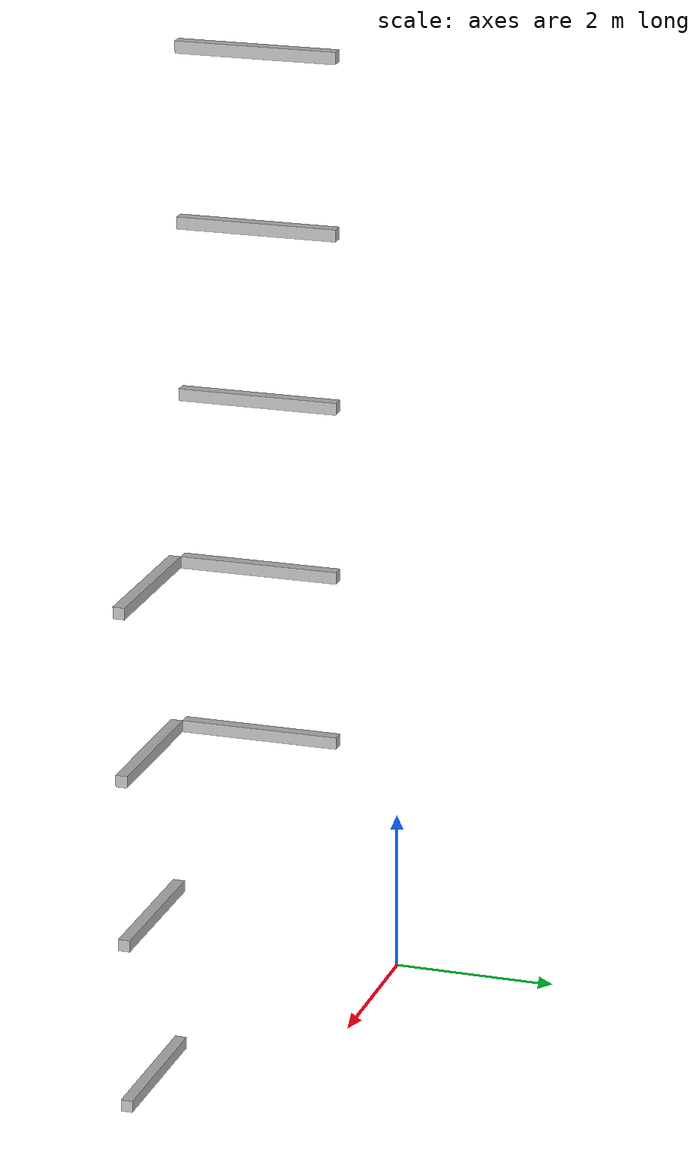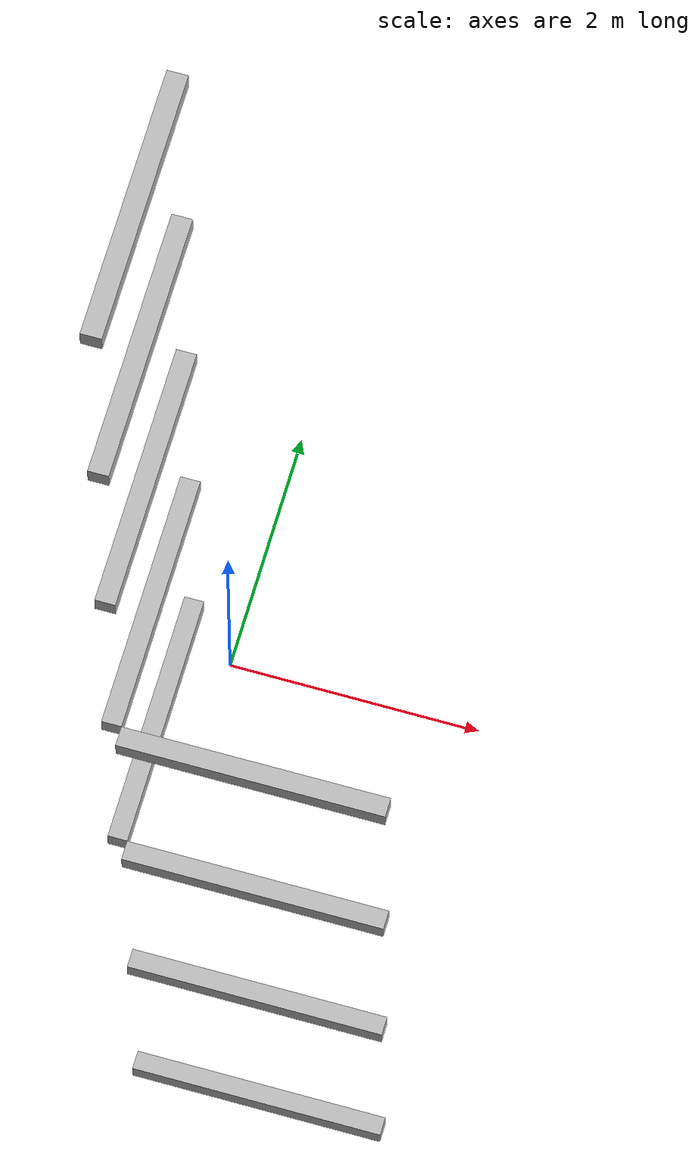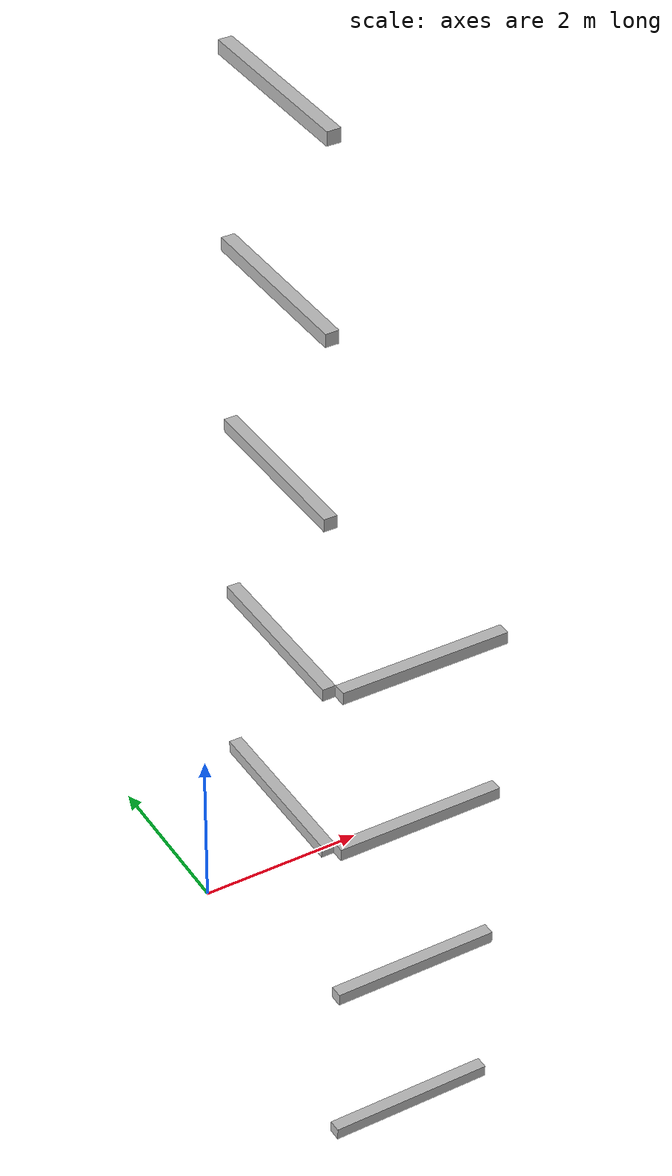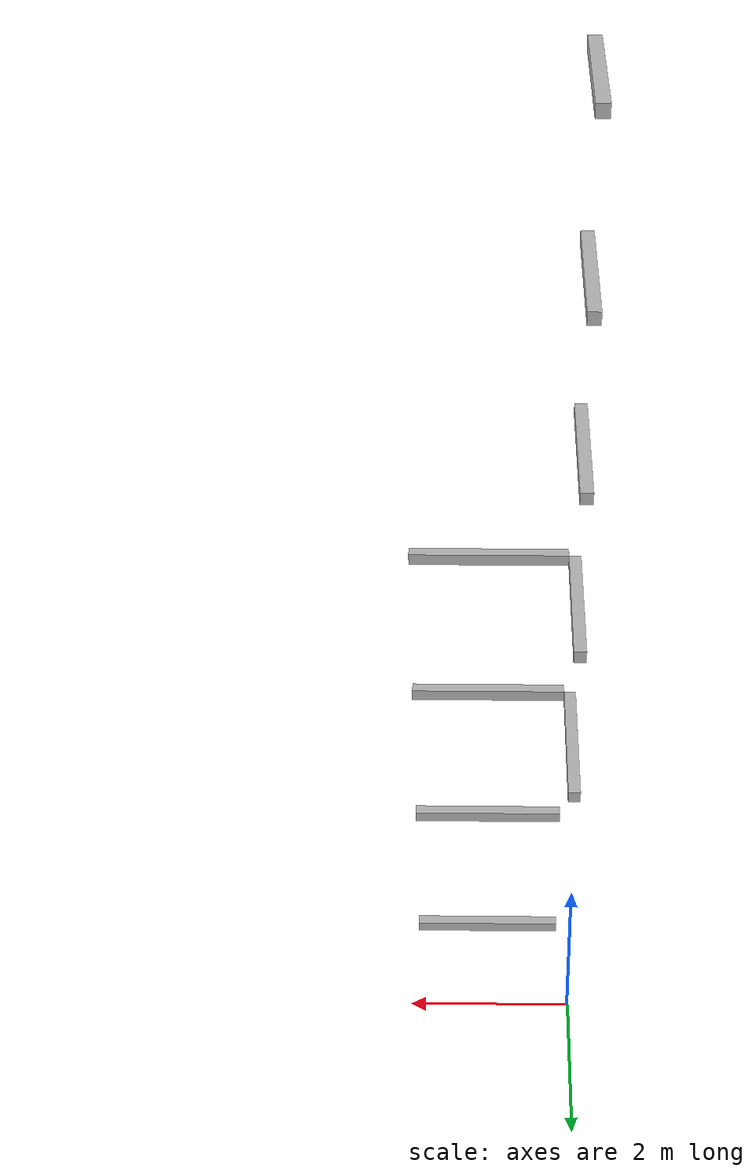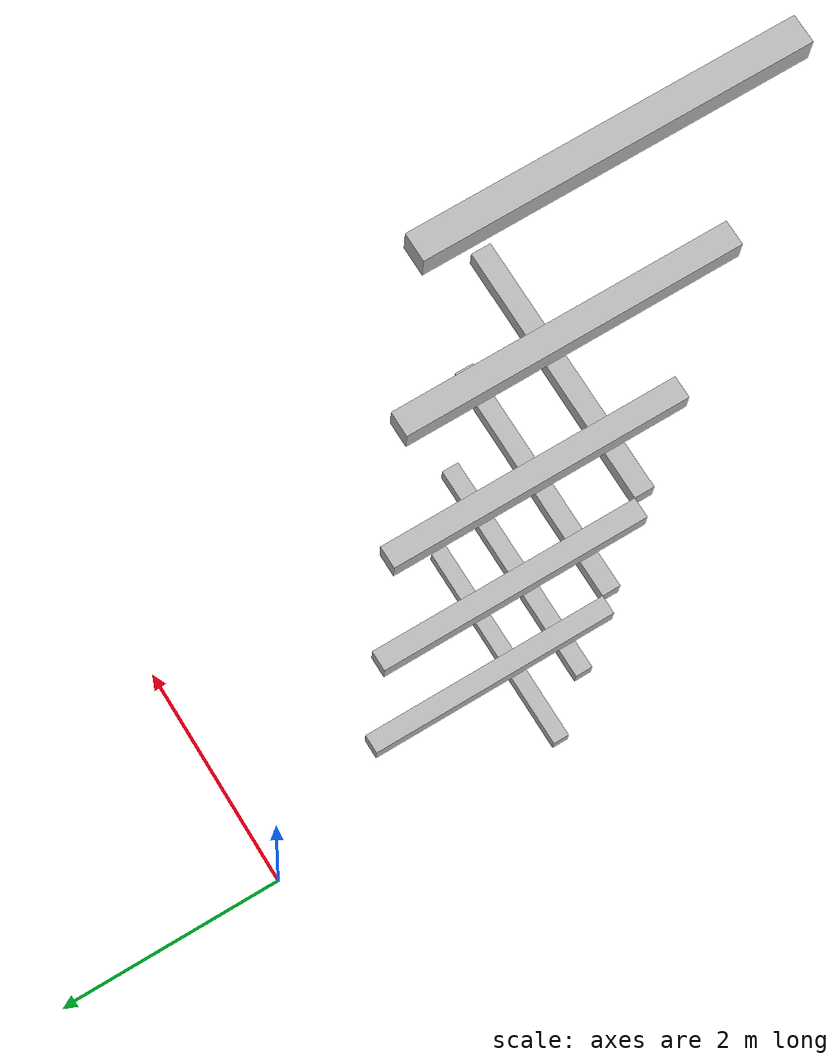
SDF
<sdf version="1.7">
 <world name="default">
  <model name="orthogonal_747_2.000.15_TS">
   <static>1</static>
   <link name="x_link_0_1_3">
    <inertial>
     <mass>1</mass>
     <inertia>
      <ixx>0.166667</ixx>
      <ixy>0</ixy>
      <ixz>0</ixz>
      <iyy>0.166667</iyy>
      <iyz>0</iyz>
      <izz>0.166667</izz>
     </inertia>
    </inertial>
    <pose>7.525 2.15 1.075 0 -0 0</pose>
    <visual name="visual_0">
     <laser_retro>225</laser_retro>
     <geometry><box><size>2 1e-06 0.15</size></box></geometry>
     <material>
      <script><name>Gazebo/Grey</name><uri>file://media/materials/scripts/gazebo.material</uri></script>
      <shader type="pixel"><normal_map>__default__</normal_map></shader>
      <ambient>0.678 0.498 0.659 1</ambient>
      <diffuse>0.7 0.7 0.7 1</diffuse>
      <specular>0.01 0.01 0.01 1</specular>
      <emissive>0 0 0 1</emissive>
     </material>
     <pose>0 -0.075 0 0 -0 0</pose>
     <transparency>1</transparency>
    </visual>
    <visual name="visual_1">
     <laser_retro>226</laser_retro>
     <geometry><box><size>2 1e-06 0.15</size></box></geometry>
     <material>
      <script><name>Gazebo/Grey</name><uri>file://media/materials/scripts/gazebo.material</uri></script>
      <shader type="pixel"><normal_map>__default__</normal_map></shader>
      <ambient>0.447 0.624 0.812 1</ambient>
      <diffuse>0.7 0.7 0.7 1</diffuse>
      <specular>0.01 0.01 0.01 1</specular>
      <emissive>0 0 0 1</emissive>
     </material>
     <pose>0 0.075 0 0 -0 0</pose>
     <transparency>1</transparency>
    </visual>
    <visual name="visual_2">
     <laser_retro>227</laser_retro>
     <geometry><box><size>2 0.15 1e-06</size></box></geometry>
     <material>
      <script><name>Gazebo/Grey</name><uri>file://media/materials/scripts/gazebo.material</uri></script>
      <shader type="pixel"><normal_map>__default__</normal_map></shader>
      <ambient>0.988 0.686 0.243 1</ambient>
      <diffuse>0.7 0.7 0.7 1</diffuse>
      <specular>0.01 0.01 0.01 1</specular>
      <emissive>0 0 0 1</emissive>
     </material>
     <pose>0 0 -0.075 0 -0 0</pose>
     <transparency>1</transparency>
    </visual>
    <visual name="visual_3">
     <laser_retro>228</laser_retro>
     <geometry><box><size>1e-06 0.15 0.15</size></box></geometry>
     <material>
      <script><name>Gazebo/Grey</name><uri>file://media/materials/scripts/gazebo.material</uri></script>
      <shader type="pixel"><normal_map>__default__</normal_map></shader>
      <ambient>0.988 0.914 0.31 1</ambient>
      <diffuse>0.7 0.7 0.7 1</diffuse>
      <specular>0.01 0.01 0.01 1</specular>
      <emissive>0 0 0 1</emissive>
     </material>
     <pose>1 0 0 0 -0 0</pose>
     <transparency>1</transparency>
    </visual>
    <visual name="visual_4">
     <laser_retro>229</laser_retro>
     <geometry><box><size>2 0.15 1e-06</size></box></geometry>
     <material>
      <script><name>Gazebo/Grey</name><uri>file://media/materials/scripts/gazebo.material</uri></script>
      <shader type="pixel"><normal_map>__default__</normal_map></shader>
      <ambient>0.937 0.161 0.161 1</ambient>
      <diffuse>0.7 0.7 0.7 1</diffuse>
      <specular>0.01 0.01 0.01 1</specular>
      <emissive>0 0 0 1</emissive>
     </material>
     <pose>0 0 0.075 0 -0 0</pose>
     <transparency>1</transparency>
    </visual>
    <visual name="visual_5">
     <laser_retro>230</laser_retro>
     <geometry><box><size>1e-06 0.15 0.15</size></box></geometry>
     <material>
      <script><name>Gazebo/Grey</name><uri>file://media/materials/scripts/gazebo.material</uri></script>
      <shader type="pixel"><normal_map>__default__</normal_map></shader>
      <ambient>0.541 0.886 0.204 1</ambient>
      <diffuse>0.7 0.7 0.7 1</diffuse>
      <specular>0.01 0.01 0.01 1</specular>
      <emissive>0 0 0 1</emissive>
     </material>
     <pose>-1 0 0 0 -0 0</pose>
     <transparency>1</transparency>
    </visual>
    <visual name="visual_texture">
     <geometry><box><size>1.9998 0.149985 0.149985</size></box></geometry>
     <material>
      <script>
       <uri>model://BASE_MODELS/simple_block_v2_textured/materials/scripts</uri>
       <uri>model://BASE_MODELS/simple_block_v2_textured/materials/textures</uri>
       <name>metal</name>
      </script>
     </material>
     <laser_retro>231</laser_retro>
    </visual>
    <collision name="collision">
     <geometry><box><size>2 0.15 0.15</size></box></geometry>
     <surface>
      <friction>
       <ode><mu>1</mu><mu2>1</mu2><fdir1>0 0 0</fdir1><slip1>0</slip1><slip2>0</slip2></ode>
       <torsional>
        <coefficient>1</coefficient>
        <patch_radius>0</patch_radius>
        <surface_radius>0</surface_radius>
        <use_patch_radius>1</use_patch_radius>
        <ode><slip>0</slip></ode>
       </torsional>
      </friction>
      <bounce><restitution_coefficient>0</restitution_coefficient><threshold>1e+06</threshold></bounce>
      <contact>
       <collide_without_contact>0</collide_without_contact>
       <collide_without_contact_bitmask>1</collide_without_contact_bitmask>
       <collide_bitmask>1</collide_bitmask>
       <ode>
        <soft_cfm>0</soft_cfm>
        <soft_erp>0.2</soft_erp>
        <kp>1e+13</kp>
        <kd>1</kd>
        <max_vel>0.01</max_vel>
        <min_depth>0</min_depth>
       </ode>
       <bullet>
        <split_impulse>1</split_impulse>
        <split_impulse_penetration_threshold>-0.01</split_impulse_penetration_threshold>
        <soft_cfm>0</soft_cfm>
        <soft_erp>0.2</soft_erp>
        <kp>1e+13</kp>
        <kd>1</kd>
       </bullet>
      </contact>
     </surface>
    </collision>
   </link>
   <link name="x_link_1_1_3">
    <inertial>
     <mass>1</mass>
     <inertia>
      <ixx>0.166667</ixx>
      <ixy>0</ixy>
      <ixz>0</ixz>
      <iyy>0.166667</iyy>
      <iyz>0</iyz>
      <izz>0.166667</izz>
     </inertia>
    </inertial>
    <pose>7.525 2.15 3.225 0 -0 0</pose>
    <visual name="visual_0">
     <laser_retro>1037</laser_retro>
     <geometry><box><size>2 1e-06 0.15</size></box></geometry>
     <material>
      <script><name>Gazebo/Grey</name><uri>file://media/materials/scripts/gazebo.material</uri></script>
      <shader type="pixel"><normal_map>__default__</normal_map></shader>
      <ambient>0.678 0.498 0.659 1</ambient>
      <diffuse>0.7 0.7 0.7 1</diffuse>
      <specular>0.01 0.01 0.01 1</specular>
      <emissive>0 0 0 1</emissive>
     </material>
     <pose>0 -0.075 0 0 -0 0</pose>
     <transparency>1</transparency>
    </visual>
    <visual name="visual_1">
     <laser_retro>1038</laser_retro>
     <geometry><box><size>2 1e-06 0.15</size></box></geometry>
     <material>
      <script><name>Gazebo/Grey</name><uri>file://media/materials/scripts/gazebo.material</uri></script>
      <shader type="pixel"><normal_map>__default__</normal_map></shader>
      <ambient>0.447 0.624 0.812 1</ambient>
      <diffuse>0.7 0.7 0.7 1</diffuse>
      <specular>0.01 0.01 0.01 1</specular>
      <emissive>0 0 0 1</emissive>
     </material>
     <pose>0 0.075 0 0 -0 0</pose>
     <transparency>1</transparency>
    </visual>
    <visual name="visual_2">
     <laser_retro>1039</laser_retro>
     <geometry><box><size>2 0.15 1e-06</size></box></geometry>
     <material>
      <script><name>Gazebo/Grey</name><uri>file://media/materials/scripts/gazebo.material</uri></script>
      <shader type="pixel"><normal_map>__default__</normal_map></shader>
      <ambient>0.988 0.686 0.243 1</ambient>
      <diffuse>0.7 0.7 0.7 1</diffuse>
      <specular>0.01 0.01 0.01 1</specular>
      <emissive>0 0 0 1</emissive>
     </material>
     <pose>0 0 -0.075 0 -0 0</pose>
     <transparency>1</transparency>
    </visual>
    <visual name="visual_3">
     <laser_retro>1040</laser_retro>
     <geometry><box><size>1e-06 0.15 0.15</size></box></geometry>
     <material>
      <script><name>Gazebo/Grey</name><uri>file://media/materials/scripts/gazebo.material</uri></script>
      <shader type="pixel"><normal_map>__default__</normal_map></shader>
      <ambient>0.988 0.914 0.31 1</ambient>
      <diffuse>0.7 0.7 0.7 1</diffuse>
      <specular>0.01 0.01 0.01 1</specular>
      <emissive>0 0 0 1</emissive>
     </material>
     <pose>1 0 0 0 -0 0</pose>
     <transparency>1</transparency>
    </visual>
    <visual name="visual_4">
     <laser_retro>1041</laser_retro>
     <geometry><box><size>2 0.15 1e-06</size></box></geometry>
     <material>
      <script><name>Gazebo/Grey</name><uri>file://media/materials/scripts/gazebo.material</uri></script>
      <shader type="pixel"><normal_map>__default__</normal_map></shader>
      <ambient>0.937 0.161 0.161 1</ambient>
      <diffuse>0.7 0.7 0.7 1</diffuse>
      <specular>0.01 0.01 0.01 1</specular>
      <emissive>0 0 0 1</emissive>
     </material>
     <pose>0 0 0.075 0 -0 0</pose>
     <transparency>1</transparency>
    </visual>
    <visual name="visual_5">
     <laser_retro>1042</laser_retro>
     <geometry><box><size>1e-06 0.15 0.15</size></box></geometry>
     <material>
      <script><name>Gazebo/Grey</name><uri>file://media/materials/scripts/gazebo.material</uri></script>
      <shader type="pixel"><normal_map>__default__</normal_map></shader>
      <ambient>0.541 0.886 0.204 1</ambient>
      <diffuse>0.7 0.7 0.7 1</diffuse>
      <specular>0.01 0.01 0.01 1</specular>
      <emissive>0 0 0 1</emissive>
     </material>
     <pose>-1 0 0 0 -0 0</pose>
     <transparency>1</transparency>
    </visual>
    <visual name="visual_texture">
     <geometry><box><size>1.9998 0.149985 0.149985</size></box></geometry>
     <material>
      <script>
       <uri>model://BASE_MODELS/simple_block_v2_textured/materials/scripts</uri>
       <uri>model://BASE_MODELS/simple_block_v2_textured/materials/textures</uri>
       <name>metal</name>
      </script>
     </material>
     <laser_retro>1043</laser_retro>
    </visual>
    <collision name="collision">
     <geometry><box><size>2 0.15 0.15</size></box></geometry>
     <surface>
      <friction>
       <ode><mu>1</mu><mu2>1</mu2><fdir1>0 0 0</fdir1><slip1>0</slip1><slip2>0</slip2></ode>
       <torsional>
        <coefficient>1</coefficient>
        <patch_radius>0</patch_radius>
        <surface_radius>0</surface_radius>
        <use_patch_radius>1</use_patch_radius>
        <ode><slip>0</slip></ode>
       </torsional>
      </friction>
      <bounce><restitution_coefficient>0</restitution_coefficient><threshold>1e+06</threshold></bounce>
      <contact>
       <collide_without_contact>0</collide_without_contact>
       <collide_without_contact_bitmask>1</collide_without_contact_bitmask>
       <collide_bitmask>1</collide_bitmask>
       <ode>
        <soft_cfm>0</soft_cfm>
        <soft_erp>0.2</soft_erp>
        <kp>1e+13</kp>
        <kd>1</kd>
        <max_vel>0.01</max_vel>
        <min_depth>0</min_depth>
       </ode>
       <bullet>
        <split_impulse>1</split_impulse>
        <split_impulse_penetration_threshold>-0.01</split_impulse_penetration_threshold>
        <soft_cfm>0</soft_cfm>
        <soft_erp>0.2</soft_erp>
        <kp>1e+13</kp>
        <kd>1</kd>
       </bullet>
      </contact>
     </surface>
    </collision>
   </link>
   <link name="x_link_2_1_3">
    <inertial>
     <mass>1</mass>
     <inertia>
      <ixx>0.166667</ixx>
      <ixy>0</ixy>
      <ixz>0</ixz>
      <iyy>0.166667</iyy>
      <iyz>0</iyz>
      <izz>0.166667</izz>
     </inertia>
    </inertial>
    <pose>7.525 2.15 5.375 0 -0 0</pose>
    <visual name="visual_0">
     <laser_retro>1940</laser_retro>
     <geometry><box><size>2 1e-06 0.15</size></box></geometry>
     <material>
      <script><name>Gazebo/Grey</name><uri>file://media/materials/scripts/gazebo.material</uri></script>
      <shader type="pixel"><normal_map>__default__</normal_map></shader>
      <ambient>0.678 0.498 0.659 1</ambient>
      <diffuse>0.7 0.7 0.7 1</diffuse>
      <specular>0.01 0.01 0.01 1</specular>
      <emissive>0 0 0 1</emissive>
     </material>
     <pose>0 -0.075 0 0 -0 0</pose>
     <transparency>1</transparency>
    </visual>
    <visual name="visual_1">
     <laser_retro>1941</laser_retro>
     <geometry><box><size>2 1e-06 0.15</size></box></geometry>
     <material>
      <script><name>Gazebo/Grey</name><uri>file://media/materials/scripts/gazebo.material</uri></script>
      <shader type="pixel"><normal_map>__default__</normal_map></shader>
      <ambient>0.447 0.624 0.812 1</ambient>
      <diffuse>0.7 0.7 0.7 1</diffuse>
      <specular>0.01 0.01 0.01 1</specular>
      <emissive>0 0 0 1</emissive>
     </material>
     <pose>0 0.075 0 0 -0 0</pose>
     <transparency>1</transparency>
    </visual>
    <visual name="visual_2">
     <laser_retro>1942</laser_retro>
     <geometry><box><size>2 0.15 1e-06</size></box></geometry>
     <material>
      <script><name>Gazebo/Grey</name><uri>file://media/materials/scripts/gazebo.material</uri></script>
      <shader type="pixel"><normal_map>__default__</normal_map></shader>
      <ambient>0.988 0.686 0.243 1</ambient>
      <diffuse>0.7 0.7 0.7 1</diffuse>
      <specular>0.01 0.01 0.01 1</specular>
      <emissive>0 0 0 1</emissive>
     </material>
     <pose>0 0 -0.075 0 -0 0</pose>
     <transparency>1</transparency>
    </visual>
    <visual name="visual_3">
     <laser_retro>1943</laser_retro>
     <geometry><box><size>1e-06 0.15 0.15</size></box></geometry>
     <material>
      <script><name>Gazebo/Grey</name><uri>file://media/materials/scripts/gazebo.material</uri></script>
      <shader type="pixel"><normal_map>__default__</normal_map></shader>
      <ambient>0.988 0.914 0.31 1</ambient>
      <diffuse>0.7 0.7 0.7 1</diffuse>
      <specular>0.01 0.01 0.01 1</specular>
      <emissive>0 0 0 1</emissive>
     </material>
     <pose>1 0 0 0 -0 0</pose>
     <transparency>1</transparency>
    </visual>
    <visual name="visual_4">
     <laser_retro>1944</laser_retro>
     <geometry><box><size>2 0.15 1e-06</size></box></geometry>
     <material>
      <script><name>Gazebo/Grey</name><uri>file://media/materials/scripts/gazebo.material</uri></script>
      <shader type="pixel"><normal_map>__default__</normal_map></shader>
      <ambient>0.937 0.161 0.161 1</ambient>
      <diffuse>0.7 0.7 0.7 1</diffuse>
      <specular>0.01 0.01 0.01 1</specular>
      <emissive>0 0 0 1</emissive>
     </material>
     <pose>0 0 0.075 0 -0 0</pose>
     <transparency>1</transparency>
    </visual>
    <visual name="visual_5">
     <laser_retro>1945</laser_retro>
     <geometry><box><size>1e-06 0.15 0.15</size></box></geometry>
     <material>
      <script><name>Gazebo/Grey</name><uri>file://media/materials/scripts/gazebo.material</uri></script>
      <shader type="pixel"><normal_map>__default__</normal_map></shader>
      <ambient>0.541 0.886 0.204 1</ambient>
      <diffuse>0.7 0.7 0.7 1</diffuse>
      <specular>0.01 0.01 0.01 1</specular>
      <emissive>0 0 0 1</emissive>
     </material>
     <pose>-1 0 0 0 -0 0</pose>
     <transparency>1</transparency>
    </visual>
    <visual name="visual_texture">
     <geometry><box><size>1.9998 0.149985 0.149985</size></box></geometry>
     <material>
      <script>
       <uri>model://BASE_MODELS/simple_block_v2_textured/materials/scripts</uri>
       <uri>model://BASE_MODELS/simple_block_v2_textured/materials/textures</uri>
       <name>metal</name>
      </script>
     </material>
     <laser_retro>1946</laser_retro>
    </visual>
    <collision name="collision">
     <geometry><box><size>2 0.15 0.15</size></box></geometry>
     <surface>
      <friction>
       <ode><mu>1</mu><mu2>1</mu2><fdir1>0 0 0</fdir1><slip1>0</slip1><slip2>0</slip2></ode>
       <torsional>
        <coefficient>1</coefficient>
        <patch_radius>0</patch_radius>
        <surface_radius>0</surface_radius>
        <use_patch_radius>1</use_patch_radius>
        <ode><slip>0</slip></ode>
       </torsional>
      </friction>
      <bounce><restitution_coefficient>0</restitution_coefficient><threshold>1e+06</threshold></bounce>
      <contact>
       <collide_without_contact>0</collide_without_contact>
       <collide_without_contact_bitmask>1</collide_without_contact_bitmask>
       <collide_bitmask>1</collide_bitmask>
       <ode>
        <soft_cfm>0</soft_cfm>
        <soft_erp>0.2</soft_erp>
        <kp>1e+13</kp>
        <kd>1</kd>
        <max_vel>0.01</max_vel>
        <min_depth>0</min_depth>
       </ode>
       <bullet>
        <split_impulse>1</split_impulse>
        <split_impulse_penetration_threshold>-0.01</split_impulse_penetration_threshold>
        <soft_cfm>0</soft_cfm>
        <soft_erp>0.2</soft_erp>
        <kp>1e+13</kp>
        <kd>1</kd>
       </bullet>
      </contact>
     </surface>
    </collision>
   </link>
   <link name="y_link_2_1_3">
    <inertial>
     <mass>1</mass>
     <inertia>
      <ixx>0.166667</ixx>
      <ixy>0</ixy>
      <ixz>0</ixz>
      <iyy>0.166667</iyy>
      <iyz>0</iyz>
      <izz>0.166667</izz>
     </inertia>
    </inertial>
    <pose>6.45 3.225 5.375 0 -0 0</pose>
    <visual name="visual_0">
     <laser_retro>1947</laser_retro>
     <geometry><box><size>0.15 1e-06 0.15</size></box></geometry>
     <material>
      <script><name>Gazebo/Grey</name><uri>file://media/materials/scripts/gazebo.material</uri></script>
      <shader type="pixel"><normal_map>__default__</normal_map></shader>
      <ambient>0.678 0.498 0.659 1</ambient>
      <diffuse>0.7 0.7 0.7 1</diffuse>
      <specular>0.01 0.01 0.01 1</specular>
      <emissive>0 0 0 1</emissive>
     </material>
     <pose>0 -1 0 0 -0 0</pose>
     <transparency>1</transparency>
    </visual>
    <visual name="visual_1">
     <laser_retro>1948</laser_retro>
     <geometry><box><size>0.15 1e-06 0.15</size></box></geometry>
     <material>
      <script><name>Gazebo/Grey</name><uri>file://media/materials/scripts/gazebo.material</uri></script>
      <shader type="pixel"><normal_map>__default__</normal_map></shader>
      <ambient>0.447 0.624 0.812 1</ambient>
      <diffuse>0.7 0.7 0.7 1</diffuse>
      <specular>0.01 0.01 0.01 1</specular>
      <emissive>0 0 0 1</emissive>
     </material>
     <pose>0 1 0 0 -0 0</pose>
     <transparency>1</transparency>
    </visual>
    <visual name="visual_2">
     <laser_retro>1949</laser_retro>
     <geometry><box><size>0.15 2 1e-06</size></box></geometry>
     <material>
      <script><name>Gazebo/Grey</name><uri>file://media/materials/scripts/gazebo.material</uri></script>
      <shader type="pixel"><normal_map>__default__</normal_map></shader>
      <ambient>0.988 0.686 0.243 1</ambient>
      <diffuse>0.7 0.7 0.7 1</diffuse>
      <specular>0.01 0.01 0.01 1</specular>
      <emissive>0 0 0 1</emissive>
     </material>
     <pose>0 0 -0.075 0 -0 0</pose>
     <transparency>1</transparency>
    </visual>
    <visual name="visual_3">
     <laser_retro>1950</laser_retro>
     <geometry><box><size>1e-06 2 0.15</size></box></geometry>
     <material>
      <script><name>Gazebo/Grey</name><uri>file://media/materials/scripts/gazebo.material</uri></script>
      <shader type="pixel"><normal_map>__default__</normal_map></shader>
      <ambient>0.988 0.914 0.31 1</ambient>
      <diffuse>0.7 0.7 0.7 1</diffuse>
      <specular>0.01 0.01 0.01 1</specular>
      <emissive>0 0 0 1</emissive>
     </material>
     <pose>0.075 0 0 0 -0 0</pose>
     <transparency>1</transparency>
    </visual>
    <visual name="visual_4">
     <laser_retro>1951</laser_retro>
     <geometry><box><size>0.15 2 1e-06</size></box></geometry>
     <material>
      <script><name>Gazebo/Grey</name><uri>file://media/materials/scripts/gazebo.material</uri></script>
      <shader type="pixel"><normal_map>__default__</normal_map></shader>
      <ambient>0.937 0.161 0.161 1</ambient>
      <diffuse>0.7 0.7 0.7 1</diffuse>
      <specular>0.01 0.01 0.01 1</specular>
      <emissive>0 0 0 1</emissive>
     </material>
     <pose>0 0 0.075 0 -0 0</pose>
     <transparency>1</transparency>
    </visual>
    <visual name="visual_5">
     <laser_retro>1952</laser_retro>
     <geometry><box><size>1e-06 2 0.15</size></box></geometry>
     <material>
      <script><name>Gazebo/Grey</name><uri>file://media/materials/scripts/gazebo.material</uri></script>
      <shader type="pixel"><normal_map>__default__</normal_map></shader>
      <ambient>0.541 0.886 0.204 1</ambient>
      <diffuse>0.7 0.7 0.7 1</diffuse>
      <specular>0.01 0.01 0.01 1</specular>
      <emissive>0 0 0 1</emissive>
     </material>
     <pose>-0.075 0 0 0 -0 0</pose>
     <transparency>1</transparency>
    </visual>
    <visual name="visual_texture">
     <geometry><box><size>0.149985 1.9998 0.149985</size></box></geometry>
     <material>
      <script>
       <uri>model://BASE_MODELS/simple_block_v2_textured/materials/scripts</uri>
       <uri>model://BASE_MODELS/simple_block_v2_textured/materials/textures</uri>
       <name>metal</name>
      </script>
     </material>
     <laser_retro>1953</laser_retro>
    </visual>
    <collision name="collision">
     <geometry><box><size>0.15 2 0.15</size></box></geometry>
     <surface>
      <friction>
       <ode><mu>1</mu><mu2>1</mu2><fdir1>0 0 0</fdir1><slip1>0</slip1><slip2>0</slip2></ode>
       <torsional>
        <coefficient>1</coefficient>
        <patch_radius>0</patch_radius>
        <surface_radius>0</surface_radius>
        <use_patch_radius>1</use_patch_radius>
        <ode><slip>0</slip></ode>
       </torsional>
      </friction>
      <bounce><restitution_coefficient>0</restitution_coefficient><threshold>1e+06</threshold></bounce>
      <contact>
       <collide_without_contact>0</collide_without_contact>
       <collide_without_contact_bitmask>1</collide_without_contact_bitmask>
       <collide_bitmask>1</collide_bitmask>
       <ode>
        <soft_cfm>0</soft_cfm>
        <soft_erp>0.2</soft_erp>
        <kp>1e+13</kp>
        <kd>1</kd>
        <max_vel>0.01</max_vel>
        <min_depth>0</min_depth>
       </ode>
       <bullet>
        <split_impulse>1</split_impulse>
        <split_impulse_penetration_threshold>-0.01</split_impulse_penetration_threshold>
        <soft_cfm>0</soft_cfm>
        <soft_erp>0.2</soft_erp>
        <kp>1e+13</kp>
        <kd>1</kd>
       </bullet>
      </contact>
     </surface>
    </collision>
   </link>
   <link name="x_link_3_1_3">
    <inertial>
     <mass>1</mass>
     <inertia>
      <ixx>0.166667</ixx>
      <ixy>0</ixy>
      <ixz>0</ixz>
      <iyy>0.166667</iyy>
      <iyz>0</iyz>
      <izz>0.166667</izz>
     </inertia>
    </inertial>
    <pose>7.525 2.15 7.525 0 -0 0</pose>
    <visual name="visual_0">
     <laser_retro>2843</laser_retro>
     <geometry><box><size>2 1e-06 0.15</size></box></geometry>
     <material>
      <script><name>Gazebo/Grey</name><uri>file://media/materials/scripts/gazebo.material</uri></script>
      <shader type="pixel"><normal_map>__default__</normal_map></shader>
      <ambient>0.678 0.498 0.659 1</ambient>
      <diffuse>0.7 0.7 0.7 1</diffuse>
      <specular>0.01 0.01 0.01 1</specular>
      <emissive>0 0 0 1</emissive>
     </material>
     <pose>0 -0.075 0 0 -0 0</pose>
     <transparency>1</transparency>
    </visual>
    <visual name="visual_1">
     <laser_retro>2844</laser_retro>
     <geometry><box><size>2 1e-06 0.15</size></box></geometry>
     <material>
      <script><name>Gazebo/Grey</name><uri>file://media/materials/scripts/gazebo.material</uri></script>
      <shader type="pixel"><normal_map>__default__</normal_map></shader>
      <ambient>0.447 0.624 0.812 1</ambient>
      <diffuse>0.7 0.7 0.7 1</diffuse>
      <specular>0.01 0.01 0.01 1</specular>
      <emissive>0 0 0 1</emissive>
     </material>
     <pose>0 0.075 0 0 -0 0</pose>
     <transparency>1</transparency>
    </visual>
    <visual name="visual_2">
     <laser_retro>2845</laser_retro>
     <geometry><box><size>2 0.15 1e-06</size></box></geometry>
     <material>
      <script><name>Gazebo/Grey</name><uri>file://media/materials/scripts/gazebo.material</uri></script>
      <shader type="pixel"><normal_map>__default__</normal_map></shader>
      <ambient>0.988 0.686 0.243 1</ambient>
      <diffuse>0.7 0.7 0.7 1</diffuse>
      <specular>0.01 0.01 0.01 1</specular>
      <emissive>0 0 0 1</emissive>
     </material>
     <pose>0 0 -0.075 0 -0 0</pose>
     <transparency>1</transparency>
    </visual>
    <visual name="visual_3">
     <laser_retro>2846</laser_retro>
     <geometry><box><size>1e-06 0.15 0.15</size></box></geometry>
     <material>
      <script><name>Gazebo/Grey</name><uri>file://media/materials/scripts/gazebo.material</uri></script>
      <shader type="pixel"><normal_map>__default__</normal_map></shader>
      <ambient>0.988 0.914 0.31 1</ambient>
      <diffuse>0.7 0.7 0.7 1</diffuse>
      <specular>0.01 0.01 0.01 1</specular>
      <emissive>0 0 0 1</emissive>
     </material>
     <pose>1 0 0 0 -0 0</pose>
     <transparency>1</transparency>
    </visual>
    <visual name="visual_4">
     <laser_retro>2847</laser_retro>
     <geometry><box><size>2 0.15 1e-06</size></box></geometry>
     <material>
      <script><name>Gazebo/Grey</name><uri>file://media/materials/scripts/gazebo.material</uri></script>
      <shader type="pixel"><normal_map>__default__</normal_map></shader>
      <ambient>0.937 0.161 0.161 1</ambient>
      <diffuse>0.7 0.7 0.7 1</diffuse>
      <specular>0.01 0.01 0.01 1</specular>
      <emissive>0 0 0 1</emissive>
     </material>
     <pose>0 0 0.075 0 -0 0</pose>
     <transparency>1</transparency>
    </visual>
    <visual name="visual_5">
     <laser_retro>2848</laser_retro>
     <geometry><box><size>1e-06 0.15 0.15</size></box></geometry>
     <material>
      <script><name>Gazebo/Grey</name><uri>file://media/materials/scripts/gazebo.material</uri></script>
      <shader type="pixel"><normal_map>__default__</normal_map></shader>
      <ambient>0.541 0.886 0.204 1</ambient>
      <diffuse>0.7 0.7 0.7 1</diffuse>
      <specular>0.01 0.01 0.01 1</specular>
      <emissive>0 0 0 1</emissive>
     </material>
     <pose>-1 0 0 0 -0 0</pose>
     <transparency>1</transparency>
    </visual>
    <visual name="visual_texture">
     <geometry><box><size>1.9998 0.149985 0.149985</size></box></geometry>
     <material>
      <script>
       <uri>model://BASE_MODELS/simple_block_v2_textured/materials/scripts</uri>
       <uri>model://BASE_MODELS/simple_block_v2_textured/materials/textures</uri>
       <name>metal</name>
      </script>
     </material>
     <laser_retro>2849</laser_retro>
    </visual>
    <collision name="collision">
     <geometry><box><size>2 0.15 0.15</size></box></geometry>
     <surface>
      <friction>
       <ode><mu>1</mu><mu2>1</mu2><fdir1>0 0 0</fdir1><slip1>0</slip1><slip2>0</slip2></ode>
       <torsional>
        <coefficient>1</coefficient>
        <patch_radius>0</patch_radius>
        <surface_radius>0</surface_radius>
        <use_patch_radius>1</use_patch_radius>
        <ode><slip>0</slip></ode>
       </torsional>
      </friction>
      <bounce><restitution_coefficient>0</restitution_coefficient><threshold>1e+06</threshold></bounce>
      <contact>
       <collide_without_contact>0</collide_without_contact>
       <collide_without_contact_bitmask>1</collide_without_contact_bitmask>
       <collide_bitmask>1</collide_bitmask>
       <ode>
        <soft_cfm>0</soft_cfm>
        <soft_erp>0.2</soft_erp>
        <kp>1e+13</kp>
        <kd>1</kd>
        <max_vel>0.01</max_vel>
        <min_depth>0</min_depth>
       </ode>
       <bullet>
        <split_impulse>1</split_impulse>
        <split_impulse_penetration_threshold>-0.01</split_impulse_penetration_threshold>
        <soft_cfm>0</soft_cfm>
        <soft_erp>0.2</soft_erp>
        <kp>1e+13</kp>
        <kd>1</kd>
       </bullet>
      </contact>
     </surface>
    </collision>
   </link>
   <link name="y_link_3_1_3">
    <inertial>
     <mass>1</mass>
     <inertia>
      <ixx>0.166667</ixx>
      <ixy>0</ixy>
      <ixz>0</ixz>
      <iyy>0.166667</iyy>
      <iyz>0</iyz>
      <izz>0.166667</izz>
     </inertia>
    </inertial>
    <pose>6.45 3.225 7.525 0 -0 0</pose>
    <visual name="visual_0">
     <laser_retro>2850</laser_retro>
     <geometry><box><size>0.15 1e-06 0.15</size></box></geometry>
     <material>
      <script><name>Gazebo/Grey</name><uri>file://media/materials/scripts/gazebo.material</uri></script>
      <shader type="pixel"><normal_map>__default__</normal_map></shader>
      <ambient>0.678 0.498 0.659 1</ambient>
      <diffuse>0.7 0.7 0.7 1</diffuse>
      <specular>0.01 0.01 0.01 1</specular>
      <emissive>0 0 0 1</emissive>
     </material>
     <pose>0 -1 0 0 -0 0</pose>
     <transparency>1</transparency>
    </visual>
    <visual name="visual_1">
     <laser_retro>2851</laser_retro>
     <geometry><box><size>0.15 1e-06 0.15</size></box></geometry>
     <material>
      <script><name>Gazebo/Grey</name><uri>file://media/materials/scripts/gazebo.material</uri></script>
      <shader type="pixel"><normal_map>__default__</normal_map></shader>
      <ambient>0.447 0.624 0.812 1</ambient>
      <diffuse>0.7 0.7 0.7 1</diffuse>
      <specular>0.01 0.01 0.01 1</specular>
      <emissive>0 0 0 1</emissive>
     </material>
     <pose>0 1 0 0 -0 0</pose>
     <transparency>1</transparency>
    </visual>
    <visual name="visual_2">
     <laser_retro>2852</laser_retro>
     <geometry><box><size>0.15 2 1e-06</size></box></geometry>
     <material>
      <script><name>Gazebo/Grey</name><uri>file://media/materials/scripts/gazebo.material</uri></script>
      <shader type="pixel"><normal_map>__default__</normal_map></shader>
      <ambient>0.988 0.686 0.243 1</ambient>
      <diffuse>0.7 0.7 0.7 1</diffuse>
      <specular>0.01 0.01 0.01 1</specular>
      <emissive>0 0 0 1</emissive>
     </material>
     <pose>0 0 -0.075 0 -0 0</pose>
     <transparency>1</transparency>
    </visual>
    <visual name="visual_3">
     <laser_retro>2853</laser_retro>
     <geometry><box><size>1e-06 2 0.15</size></box></geometry>
     <material>
      <script><name>Gazebo/Grey</name><uri>file://media/materials/scripts/gazebo.material</uri></script>
      <shader type="pixel"><normal_map>__default__</normal_map></shader>
      <ambient>0.988 0.914 0.31 1</ambient>
      <diffuse>0.7 0.7 0.7 1</diffuse>
      <specular>0.01 0.01 0.01 1</specular>
      <emissive>0 0 0 1</emissive>
     </material>
     <pose>0.075 0 0 0 -0 0</pose>
     <transparency>1</transparency>
    </visual>
    <visual name="visual_4">
     <laser_retro>2854</laser_retro>
     <geometry><box><size>0.15 2 1e-06</size></box></geometry>
     <material>
      <script><name>Gazebo/Grey</name><uri>file://media/materials/scripts/gazebo.material</uri></script>
      <shader type="pixel"><normal_map>__default__</normal_map></shader>
      <ambient>0.937 0.161 0.161 1</ambient>
      <diffuse>0.7 0.7 0.7 1</diffuse>
      <specular>0.01 0.01 0.01 1</specular>
      <emissive>0 0 0 1</emissive>
     </material>
     <pose>0 0 0.075 0 -0 0</pose>
     <transparency>1</transparency>
    </visual>
    <visual name="visual_5">
     <laser_retro>2855</laser_retro>
     <geometry><box><size>1e-06 2 0.15</size></box></geometry>
     <material>
      <script><name>Gazebo/Grey</name><uri>file://media/materials/scripts/gazebo.material</uri></script>
      <shader type="pixel"><normal_map>__default__</normal_map></shader>
      <ambient>0.541 0.886 0.204 1</ambient>
      <diffuse>0.7 0.7 0.7 1</diffuse>
      <specular>0.01 0.01 0.01 1</specular>
      <emissive>0 0 0 1</emissive>
     </material>
     <pose>-0.075 0 0 0 -0 0</pose>
     <transparency>1</transparency>
    </visual>
    <visual name="visual_texture">
     <geometry><box><size>0.149985 1.9998 0.149985</size></box></geometry>
     <material>
      <script>
       <uri>model://BASE_MODELS/simple_block_v2_textured/materials/scripts</uri>
       <uri>model://BASE_MODELS/simple_block_v2_textured/materials/textures</uri>
       <name>metal</name>
      </script>
     </material>
     <laser_retro>2856</laser_retro>
    </visual>
    <collision name="collision">
     <geometry><box><size>0.15 2 0.15</size></box></geometry>
     <surface>
      <friction>
       <ode><mu>1</mu><mu2>1</mu2><fdir1>0 0 0</fdir1><slip1>0</slip1><slip2>0</slip2></ode>
       <torsional>
        <coefficient>1</coefficient>
        <patch_radius>0</patch_radius>
        <surface_radius>0</surface_radius>
        <use_patch_radius>1</use_patch_radius>
        <ode><slip>0</slip></ode>
       </torsional>
      </friction>
      <bounce><restitution_coefficient>0</restitution_coefficient><threshold>1e+06</threshold></bounce>
      <contact>
       <collide_without_contact>0</collide_without_contact>
       <collide_without_contact_bitmask>1</collide_without_contact_bitmask>
       <collide_bitmask>1</collide_bitmask>
       <ode>
        <soft_cfm>0</soft_cfm>
        <soft_erp>0.2</soft_erp>
        <kp>1e+13</kp>
        <kd>1</kd>
        <max_vel>0.01</max_vel>
        <min_depth>0</min_depth>
       </ode>
       <bullet>
        <split_impulse>1</split_impulse>
        <split_impulse_penetration_threshold>-0.01</split_impulse_penetration_threshold>
        <soft_cfm>0</soft_cfm>
        <soft_erp>0.2</soft_erp>
        <kp>1e+13</kp>
        <kd>1</kd>
       </bullet>
      </contact>
     </surface>
    </collision>
   </link>
   <link name="y_link_4_1_3">
    <inertial>
     <mass>1</mass>
     <inertia>
      <ixx>0.166667</ixx>
      <ixy>0</ixy>
      <ixz>0</ixz>
      <iyy>0.166667</iyy>
      <iyz>0</iyz>
      <izz>0.166667</izz>
     </inertia>
    </inertial>
    <pose>6.45 3.225 9.675 0 -0 0</pose>
    <visual name="visual_0">
     <laser_retro>3753</laser_retro>
     <geometry><box><size>0.15 1e-06 0.15</size></box></geometry>
     <material>
      <script><name>Gazebo/Grey</name><uri>file://media/materials/scripts/gazebo.material</uri></script>
      <shader type="pixel"><normal_map>__default__</normal_map></shader>
      <ambient>0.678 0.498 0.659 1</ambient>
      <diffuse>0.7 0.7 0.7 1</diffuse>
      <specular>0.01 0.01 0.01 1</specular>
      <emissive>0 0 0 1</emissive>
     </material>
     <pose>0 -1 0 0 -0 0</pose>
     <transparency>1</transparency>
    </visual>
    <visual name="visual_1">
     <laser_retro>3754</laser_retro>
     <geometry><box><size>0.15 1e-06 0.15</size></box></geometry>
     <material>
      <script><name>Gazebo/Grey</name><uri>file://media/materials/scripts/gazebo.material</uri></script>
      <shader type="pixel"><normal_map>__default__</normal_map></shader>
      <ambient>0.447 0.624 0.812 1</ambient>
      <diffuse>0.7 0.7 0.7 1</diffuse>
      <specular>0.01 0.01 0.01 1</specular>
      <emissive>0 0 0 1</emissive>
     </material>
     <pose>0 1 0 0 -0 0</pose>
     <transparency>1</transparency>
    </visual>
    <visual name="visual_2">
     <laser_retro>3755</laser_retro>
     <geometry><box><size>0.15 2 1e-06</size></box></geometry>
     <material>
      <script><name>Gazebo/Grey</name><uri>file://media/materials/scripts/gazebo.material</uri></script>
      <shader type="pixel"><normal_map>__default__</normal_map></shader>
      <ambient>0.988 0.686 0.243 1</ambient>
      <diffuse>0.7 0.7 0.7 1</diffuse>
      <specular>0.01 0.01 0.01 1</specular>
      <emissive>0 0 0 1</emissive>
     </material>
     <pose>0 0 -0.075 0 -0 0</pose>
     <transparency>1</transparency>
    </visual>
    <visual name="visual_3">
     <laser_retro>3756</laser_retro>
     <geometry><box><size>1e-06 2 0.15</size></box></geometry>
     <material>
      <script><name>Gazebo/Grey</name><uri>file://media/materials/scripts/gazebo.material</uri></script>
      <shader type="pixel"><normal_map>__default__</normal_map></shader>
      <ambient>0.988 0.914 0.31 1</ambient>
      <diffuse>0.7 0.7 0.7 1</diffuse>
      <specular>0.01 0.01 0.01 1</specular>
      <emissive>0 0 0 1</emissive>
     </material>
     <pose>0.075 0 0 0 -0 0</pose>
     <transparency>1</transparency>
    </visual>
    <visual name="visual_4">
     <laser_retro>3757</laser_retro>
     <geometry><box><size>0.15 2 1e-06</size></box></geometry>
     <material>
      <script><name>Gazebo/Grey</name><uri>file://media/materials/scripts/gazebo.material</uri></script>
      <shader type="pixel"><normal_map>__default__</normal_map></shader>
      <ambient>0.937 0.161 0.161 1</ambient>
      <diffuse>0.7 0.7 0.7 1</diffuse>
      <specular>0.01 0.01 0.01 1</specular>
      <emissive>0 0 0 1</emissive>
     </material>
     <pose>0 0 0.075 0 -0 0</pose>
     <transparency>1</transparency>
    </visual>
    <visual name="visual_5">
     <laser_retro>3758</laser_retro>
     <geometry><box><size>1e-06 2 0.15</size></box></geometry>
     <material>
      <script><name>Gazebo/Grey</name><uri>file://media/materials/scripts/gazebo.material</uri></script>
      <shader type="pixel"><normal_map>__default__</normal_map></shader>
      <ambient>0.541 0.886 0.204 1</ambient>
      <diffuse>0.7 0.7 0.7 1</diffuse>
      <specular>0.01 0.01 0.01 1</specular>
      <emissive>0 0 0 1</emissive>
     </material>
     <pose>-0.075 0 0 0 -0 0</pose>
     <transparency>1</transparency>
    </visual>
    <visual name="visual_texture">
     <geometry><box><size>0.149985 1.9998 0.149985</size></box></geometry>
     <material>
      <script>
       <uri>model://BASE_MODELS/simple_block_v2_textured/materials/scripts</uri>
       <uri>model://BASE_MODELS/simple_block_v2_textured/materials/textures</uri>
       <name>metal</name>
      </script>
     </material>
     <laser_retro>3759</laser_retro>
    </visual>
    <collision name="collision">
     <geometry><box><size>0.15 2 0.15</size></box></geometry>
     <surface>
      <friction>
       <ode><mu>1</mu><mu2>1</mu2><fdir1>0 0 0</fdir1><slip1>0</slip1><slip2>0</slip2></ode>
       <torsional>
        <coefficient>1</coefficient>
        <patch_radius>0</patch_radius>
        <surface_radius>0</surface_radius>
        <use_patch_radius>1</use_patch_radius>
        <ode><slip>0</slip></ode>
       </torsional>
      </friction>
      <bounce><restitution_coefficient>0</restitution_coefficient><threshold>1e+06</threshold></bounce>
      <contact>
       <collide_without_contact>0</collide_without_contact>
       <collide_without_contact_bitmask>1</collide_without_contact_bitmask>
       <collide_bitmask>1</collide_bitmask>
       <ode>
        <soft_cfm>0</soft_cfm>
        <soft_erp>0.2</soft_erp>
        <kp>1e+13</kp>
        <kd>1</kd>
        <max_vel>0.01</max_vel>
        <min_depth>0</min_depth>
       </ode>
       <bullet>
        <split_impulse>1</split_impulse>
        <split_impulse_penetration_threshold>-0.01</split_impulse_penetration_threshold>
        <soft_cfm>0</soft_cfm>
        <soft_erp>0.2</soft_erp>
        <kp>1e+13</kp>
        <kd>1</kd>
       </bullet>
      </contact>
     </surface>
    </collision>
   </link>
   <link name="y_link_5_1_3">
    <inertial>
     <mass>1</mass>
     <inertia>
      <ixx>0.166667</ixx>
      <ixy>0</ixy>
      <ixz>0</ixz>
      <iyy>0.166667</iyy>
      <iyz>0</iyz>
      <izz>0.166667</izz>
     </inertia>
    </inertial>
    <pose>6.45 3.225 11.825 0 -0 0</pose>
    <visual name="visual_0">
     <laser_retro>4656</laser_retro>
     <geometry><box><size>0.15 1e-06 0.15</size></box></geometry>
     <material>
      <script><name>Gazebo/Grey</name><uri>file://media/materials/scripts/gazebo.material</uri></script>
      <shader type="pixel"><normal_map>__default__</normal_map></shader>
      <ambient>0.678 0.498 0.659 1</ambient>
      <diffuse>0.7 0.7 0.7 1</diffuse>
      <specular>0.01 0.01 0.01 1</specular>
      <emissive>0 0 0 1</emissive>
     </material>
     <pose>0 -1 0 0 -0 0</pose>
     <transparency>1</transparency>
    </visual>
    <visual name="visual_1">
     <laser_retro>4657</laser_retro>
     <geometry><box><size>0.15 1e-06 0.15</size></box></geometry>
     <material>
      <script><name>Gazebo/Grey</name><uri>file://media/materials/scripts/gazebo.material</uri></script>
      <shader type="pixel"><normal_map>__default__</normal_map></shader>
      <ambient>0.447 0.624 0.812 1</ambient>
      <diffuse>0.7 0.7 0.7 1</diffuse>
      <specular>0.01 0.01 0.01 1</specular>
      <emissive>0 0 0 1</emissive>
     </material>
     <pose>0 1 0 0 -0 0</pose>
     <transparency>1</transparency>
    </visual>
    <visual name="visual_2">
     <laser_retro>4658</laser_retro>
     <geometry><box><size>0.15 2 1e-06</size></box></geometry>
     <material>
      <script><name>Gazebo/Grey</name><uri>file://media/materials/scripts/gazebo.material</uri></script>
      <shader type="pixel"><normal_map>__default__</normal_map></shader>
      <ambient>0.988 0.686 0.243 1</ambient>
      <diffuse>0.7 0.7 0.7 1</diffuse>
      <specular>0.01 0.01 0.01 1</specular>
      <emissive>0 0 0 1</emissive>
     </material>
     <pose>0 0 -0.075 0 -0 0</pose>
     <transparency>1</transparency>
    </visual>
    <visual name="visual_3">
     <laser_retro>4659</laser_retro>
     <geometry><box><size>1e-06 2 0.15</size></box></geometry>
     <material>
      <script><name>Gazebo/Grey</name><uri>file://media/materials/scripts/gazebo.material</uri></script>
      <shader type="pixel"><normal_map>__default__</normal_map></shader>
      <ambient>0.988 0.914 0.31 1</ambient>
      <diffuse>0.7 0.7 0.7 1</diffuse>
      <specular>0.01 0.01 0.01 1</specular>
      <emissive>0 0 0 1</emissive>
     </material>
     <pose>0.075 0 0 0 -0 0</pose>
     <transparency>1</transparency>
    </visual>
    <visual name="visual_4">
     <laser_retro>4660</laser_retro>
     <geometry><box><size>0.15 2 1e-06</size></box></geometry>
     <material>
      <script><name>Gazebo/Grey</name><uri>file://media/materials/scripts/gazebo.material</uri></script>
      <shader type="pixel"><normal_map>__default__</normal_map></shader>
      <ambient>0.937 0.161 0.161 1</ambient>
      <diffuse>0.7 0.7 0.7 1</diffuse>
      <specular>0.01 0.01 0.01 1</specular>
      <emissive>0 0 0 1</emissive>
     </material>
     <pose>0 0 0.075 0 -0 0</pose>
     <transparency>1</transparency>
    </visual>
    <visual name="visual_5">
     <laser_retro>4661</laser_retro>
     <geometry><box><size>1e-06 2 0.15</size></box></geometry>
     <material>
      <script><name>Gazebo/Grey</name><uri>file://media/materials/scripts/gazebo.material</uri></script>
      <shader type="pixel"><normal_map>__default__</normal_map></shader>
      <ambient>0.541 0.886 0.204 1</ambient>
      <diffuse>0.7 0.7 0.7 1</diffuse>
      <specular>0.01 0.01 0.01 1</specular>
      <emissive>0 0 0 1</emissive>
     </material>
     <pose>-0.075 0 0 0 -0 0</pose>
     <transparency>1</transparency>
    </visual>
    <visual name="visual_texture">
     <geometry><box><size>0.149985 1.9998 0.149985</size></box></geometry>
     <material>
      <script>
       <uri>model://BASE_MODELS/simple_block_v2_textured/materials/scripts</uri>
       <uri>model://BASE_MODELS/simple_block_v2_textured/materials/textures</uri>
       <name>metal</name>
      </script>
     </material>
     <laser_retro>4662</laser_retro>
    </visual>
    <collision name="collision">
     <geometry><box><size>0.15 2 0.15</size></box></geometry>
     <surface>
      <friction>
       <ode><mu>1</mu><mu2>1</mu2><fdir1>0 0 0</fdir1><slip1>0</slip1><slip2>0</slip2></ode>
       <torsional>
        <coefficient>1</coefficient>
        <patch_radius>0</patch_radius>
        <surface_radius>0</surface_radius>
        <use_patch_radius>1</use_patch_radius>
        <ode><slip>0</slip></ode>
       </torsional>
      </friction>
      <bounce><restitution_coefficient>0</restitution_coefficient><threshold>1e+06</threshold></bounce>
      <contact>
       <collide_without_contact>0</collide_without_contact>
       <collide_without_contact_bitmask>1</collide_without_contact_bitmask>
       <collide_bitmask>1</collide_bitmask>
       <ode>
        <soft_cfm>0</soft_cfm>
        <soft_erp>0.2</soft_erp>
        <kp>1e+13</kp>
        <kd>1</kd>
        <max_vel>0.01</max_vel>
        <min_depth>0</min_depth>
       </ode>
       <bullet>
        <split_impulse>1</split_impulse>
        <split_impulse_penetration_threshold>-0.01</split_impulse_penetration_threshold>
        <soft_cfm>0</soft_cfm>
        <soft_erp>0.2</soft_erp>
        <kp>1e+13</kp>
        <kd>1</kd>
       </bullet>
      </contact>
     </surface>
    </collision>
   </link>
   <link name="y_link_6_1_3">
    <inertial>
     <mass>1</mass>
     <inertia>
      <ixx>0.166667</ixx>
      <ixy>0</ixy>
      <ixz>0</ixz>
      <iyy>0.166667</iyy>
      <iyz>0</iyz>
      <izz>0.166667</izz>
     </inertia>
    </inertial>
    <pose>6.45 3.225 13.975 0 -0 0</pose>
    <visual name="visual_0">
     <laser_retro>5573</laser_retro>
     <geometry><box><size>0.15 1e-06 0.15</size></box></geometry>
     <material>
      <script><name>Gazebo/Grey</name><uri>file://media/materials/scripts/gazebo.material</uri></script>
      <shader type="pixel"><normal_map>__default__</normal_map></shader>
      <ambient>0.678 0.498 0.659 1</ambient>
      <diffuse>0.7 0.7 0.7 1</diffuse>
      <specular>0.01 0.01 0.01 1</specular>
      <emissive>0 0 0 1</emissive>
     </material>
     <pose>0 -1 0 0 -0 0</pose>
     <transparency>1</transparency>
    </visual>
    <visual name="visual_1">
     <laser_retro>5574</laser_retro>
     <geometry><box><size>0.15 1e-06 0.15</size></box></geometry>
     <material>
      <script><name>Gazebo/Grey</name><uri>file://media/materials/scripts/gazebo.material</uri></script>
      <shader type="pixel"><normal_map>__default__</normal_map></shader>
      <ambient>0.447 0.624 0.812 1</ambient>
      <diffuse>0.7 0.7 0.7 1</diffuse>
      <specular>0.01 0.01 0.01 1</specular>
      <emissive>0 0 0 1</emissive>
     </material>
     <pose>0 1 0 0 -0 0</pose>
     <transparency>1</transparency>
    </visual>
    <visual name="visual_2">
     <laser_retro>5575</laser_retro>
     <geometry><box><size>0.15 2 1e-06</size></box></geometry>
     <material>
      <script><name>Gazebo/Grey</name><uri>file://media/materials/scripts/gazebo.material</uri></script>
      <shader type="pixel"><normal_map>__default__</normal_map></shader>
      <ambient>0.988 0.686 0.243 1</ambient>
      <diffuse>0.7 0.7 0.7 1</diffuse>
      <specular>0.01 0.01 0.01 1</specular>
      <emissive>0 0 0 1</emissive>
     </material>
     <pose>0 0 -0.075 0 -0 0</pose>
     <transparency>1</transparency>
    </visual>
    <visual name="visual_3">
     <laser_retro>5576</laser_retro>
     <geometry><box><size>1e-06 2 0.15</size></box></geometry>
     <material>
      <script><name>Gazebo/Grey</name><uri>file://media/materials/scripts/gazebo.material</uri></script>
      <shader type="pixel"><normal_map>__default__</normal_map></shader>
      <ambient>0.988 0.914 0.31 1</ambient>
      <diffuse>0.7 0.7 0.7 1</diffuse>
      <specular>0.01 0.01 0.01 1</specular>
      <emissive>0 0 0 1</emissive>
     </material>
     <pose>0.075 0 0 0 -0 0</pose>
     <transparency>1</transparency>
    </visual>
    <visual name="visual_4">
     <laser_retro>5577</laser_retro>
     <geometry><box><size>0.15 2 1e-06</size></box></geometry>
     <material>
      <script><name>Gazebo/Grey</name><uri>file://media/materials/scripts/gazebo.material</uri></script>
      <shader type="pixel"><normal_map>__default__</normal_map></shader>
      <ambient>0.937 0.161 0.161 1</ambient>
      <diffuse>0.7 0.7 0.7 1</diffuse>
      <specular>0.01 0.01 0.01 1</specular>
      <emissive>0 0 0 1</emissive>
     </material>
     <pose>0 0 0.075 0 -0 0</pose>
     <transparency>1</transparency>
    </visual>
    <visual name="visual_5">
     <laser_retro>5578</laser_retro>
     <geometry><box><size>1e-06 2 0.15</size></box></geometry>
     <material>
      <script><name>Gazebo/Grey</name><uri>file://media/materials/scripts/gazebo.material</uri></script>
      <shader type="pixel"><normal_map>__default__</normal_map></shader>
      <ambient>0.541 0.886 0.204 1</ambient>
      <diffuse>0.7 0.7 0.7 1</diffuse>
      <specular>0.01 0.01 0.01 1</specular>
      <emissive>0 0 0 1</emissive>
     </material>
     <pose>-0.075 0 0 0 -0 0</pose>
     <transparency>1</transparency>
    </visual>
    <visual name="visual_texture">
     <geometry><box><size>0.149985 1.9998 0.149985</size></box></geometry>
     <material>
      <script>
       <uri>model://BASE_MODELS/simple_block_v2_textured/materials/scripts</uri>
       <uri>model://BASE_MODELS/simple_block_v2_textured/materials/textures</uri>
       <name>metal</name>
      </script>
     </material>
     <laser_retro>5579</laser_retro>
    </visual>
    <collision name="collision">
     <geometry><box><size>0.15 2 0.15</size></box></geometry>
     <surface>
      <friction>
       <ode><mu>1</mu><mu2>1</mu2><fdir1>0 0 0</fdir1><slip1>0</slip1><slip2>0</slip2></ode>
       <torsional>
        <coefficient>1</coefficient>
        <patch_radius>0</patch_radius>
        <surface_radius>0</surface_radius>
        <use_patch_radius>1</use_patch_radius>
        <ode><slip>0</slip></ode>
       </torsional>
      </friction>
      <bounce><restitution_coefficient>0</restitution_coefficient><threshold>1e+06</threshold></bounce>
      <contact>
       <collide_without_contact>0</collide_without_contact>
       <collide_without_contact_bitmask>1</collide_without_contact_bitmask>
       <collide_bitmask>1</collide_bitmask>
       <ode>
        <soft_cfm>0</soft_cfm>
        <soft_erp>0.2</soft_erp>
        <kp>1e+13</kp>
        <kd>1</kd>
        <max_vel>0.01</max_vel>
        <min_depth>0</min_depth>
       </ode>
       <bullet>
        <split_impulse>1</split_impulse>
        <split_impulse_penetration_threshold>-0.01</split_impulse_penetration_threshold>
        <soft_cfm>0</soft_cfm>
        <soft_erp>0.2</soft_erp>
        <kp>1e+13</kp>
        <kd>1</kd>
       </bullet>
      </contact>
     </surface>
    </collision>
   </link>
   <pose>-6.47624 -5 -2.5 0 -0 0</pose>
  </model>
 </world>
</sdf>
